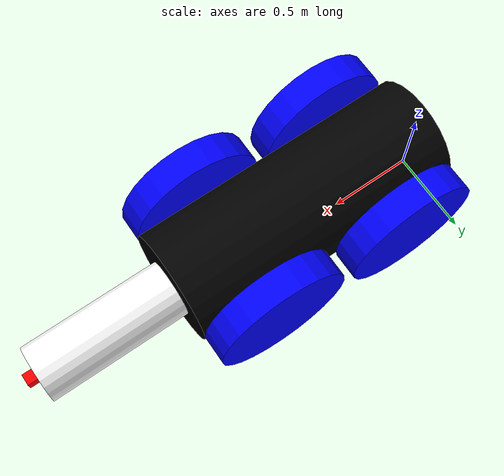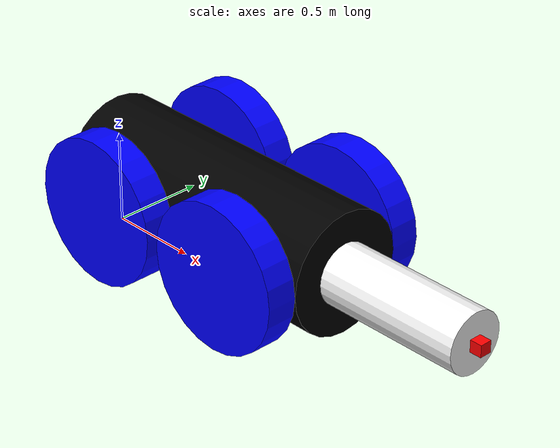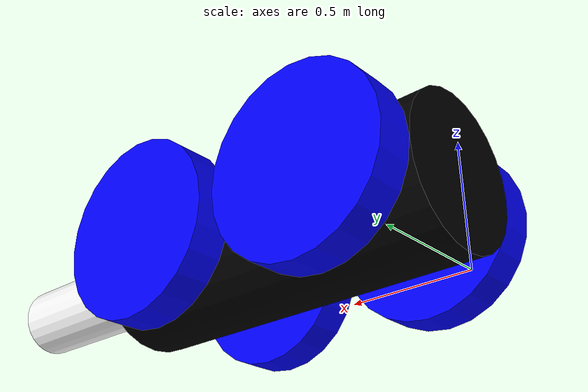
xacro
<?xml version="1.0"?>
<robot xmlns:xacro="http://www.ros.org/wiki/xacro" name="colonoscopy">

    <xacro:include filename="inertial_macros.xacro"/>

    <xacro:include filename="depth_camera.xacro"/>

    <xacro:include filename="robot_core.xacro"/>

    <xacro:include filename="keyboard_control.xacro"/>

    <xacro:include filename="control.xacro"/>

</robot>

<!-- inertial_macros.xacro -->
<robot xmlns:xacro="http://www.ros.org/wiki/xacro" name="colonoscopy">

    <!-- Specify some standard inertial calculations https://en.wikipedia.org/wiki/List_of_moments_of_inertia -->
    <!-- These make use of xacro's mathematical functionality -->

    <xacro:macro name="inertial_sphere" params="mass radius *origin">
        <inertial>
            <xacro:insert_block name="origin"/>
            <mass value="${mass}" />
            <inertia ixx="${(2/5) * mass * (radius*radius)}" ixy="0.0" ixz="0.0"
                    iyy="${(2/5) * mass * (radius*radius)}" iyz="0.0"
                    izz="${(2/5) * mass * (radius*radius)}" />
        </inertial>
    </xacro:macro>

    <xacro:macro name="inertial_box" params="mass x y z *origin">
        <inertial>
            <xacro:insert_block name="origin"/>
            <mass value="${mass}" />
            <inertia ixx="${(1/12) * mass * (y*y+z*z)}" ixy="0.0" ixz="0.0"
                    iyy="${(1/12) * mass * (x*x+z*z)}" iyz="0.0"
                    izz="${(1/12) * mass * (x*x+y*y)}" />
        </inertial>
    </xacro:macro>

    <xacro:macro name="inertial_cylinder" params="mass length radius *origin">
        <inertial>
            <xacro:insert_block name="origin"/>
            <mass value="${mass}" />
            <inertia ixx="${(1/12) * mass * (3*radius*radius + length*length)}" ixy="0.0" ixz="0.0"
                    iyy="${(1/12) * mass * (3*radius*radius + length*length)}" iyz="0.0"
                    izz="${(1/2) * mass * (radius*radius)}" />
        </inertial>
    </xacro:macro>

</robot>

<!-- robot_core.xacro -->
<robot xmlns:xacro="http://www.ros.org/wiki/xacro" name="colonoscopy">

    <!-- COLORS -->
    <material name="white">
        <color rgba="1 1 1 1" />
    </material>

    <material name="orange">
        <color rgba="1 0.3 0.1 1"/>
    </material>

    <material name="blue">
        <color rgba="0 0 1 1"/>
    </material>

    <material name="black">
        <color rgba="0 0 0 1"/>
    </material>

    <material name="red">
        <color rgba="1 0 0 1"/>
    </material>

    <!-- BASE LINK -->
    <link name="base_link"/>

    <!-- DEFINE PARAMETERS -->
    <xacro:property name="chassis_radius" value="0.0065"/>
    <xacro:property name="chassis_length" value="${chassis_radius * 5}"/>
    <xacro:property name="wheel_radius" value="${chassis_radius * 1.2}"/>
    <xacro:property name="wheel_length" value="${chassis_length * 0.1}"/>
    <xacro:property name="chassis_mass" value="1.0"/>
    <xacro:property name="wheel_mass" value="0.005"/>
    <xacro:property name="caster_wheel_mass" value="0.01"/>

    <!-- Update All Parameters from a Single Parameter -->
    <xacro:property name="scale" value="50.0"/>
    <xacro:property name="scaled_back_chassis_radius" value="${chassis_radius * scale}"/>
    <xacro:property name="scaled_back_chassis_length" value="${chassis_length * scale}"/>
    <xacro:property name="scaled_front_chassis_radius" value="${scaled_back_chassis_radius * 0.5}"/>
    <xacro:property name="scaled_front_chassis_length" value="${scaled_back_chassis_length * 0.5}"/>
    <xacro:property name="scaled_back_wheel_radius" value="${wheel_radius * scale}"/>
    <xacro:property name="scaled_back_wheel_length" value="${wheel_length * scale}"/>
    <xacro:property name="scaled_chassis_mass" value="${chassis_mass * scale}"/>
    <xacro:property name="scaled_front_chassis_mass" value="${scaled_chassis_mass * 0.2}"/>
    <xacro:property name="scaled_wheel_mass" value="${wheel_mass * scale}"/>
    <xacro:property name="scaled_caster_wheel_mass" value="${caster_wheel_mass * scale}"/>
    <xacro:property name="scaled_camera_length" value="${scaled_back_chassis_radius * 0.2}"/>

    <!-- BACK CHASSIS LINK -->
    <joint name="back_chassis_joint" type="fixed">
        <parent link="base_link"/>
        <child link="back_chassis"/>
        <origin xyz="${scaled_back_chassis_length / 2} 0 ${scaled_back_wheel_radius}" rpy="0 0 0"/>
    </joint>

    <link name="back_chassis">
        <visual>
            <origin xyz="0 0 0" rpy="0 ${pi/2} 0"/>
            <geometry>
                <cylinder radius="${scaled_back_chassis_radius}" length="${scaled_back_chassis_length}"/>
            </geometry>
            <material name="black"/>
        </visual>
        <collision>
            <origin xyz="0 0 0" rpy="0 ${pi/2} 0"/>
            <geometry>
                <cylinder radius="${scaled_back_chassis_radius}" length="${scaled_back_chassis_length - scaled_front_chassis_radius}"/>
            </geometry>
        </collision>
        <xacro:inertial_cylinder mass="${scaled_chassis_mass}" radius="${scaled_back_chassis_radius}" length="${scaled_back_chassis_length}">
            <origin xyz="0 0 0" rpy="0 ${pi/2} 0"/>
        </xacro:inertial_cylinder>
    </link>

    <gazebo reference="back_chassis">
        <material>Gazebo/Black</material>
    </gazebo>

    <joint name="lb_wheel_joint" type="continuous">
        <parent link="back_chassis"/>
        <child link="lb_wheel"/>
        <origin xyz="${scaled_back_wheel_radius - scaled_back_chassis_length / 2} ${scaled_back_chassis_radius} 0" rpy="-${pi/2} 0 0" />
        <axis xyz="0 0 1"/>
    </joint>

    <link name="lb_wheel">
        <visual>
            <origin xyz="0 0 ${scaled_back_wheel_length / 2}" rpy="0 0 0"/>
            <geometry>
                <cylinder radius="${scaled_back_wheel_radius}" length="${scaled_back_wheel_length}"/>
            </geometry>
            <material name="blue"/>
        </visual>
        <collision>
            <origin xyz="0 0 ${scaled_back_wheel_length / 2}" rpy="0 0 0"/>
            <geometry>
                <cylinder radius="${scaled_back_wheel_radius}" length="${scaled_back_wheel_length}"/>
            </geometry>
        </collision>
        <xacro:inertial_cylinder mass="${scaled_wheel_mass}" radius="${scaled_back_wheel_radius}" length="${scaled_back_wheel_length}">
            <origin xyz="0 0 ${scaled_back_wheel_length / 2}" rpy="0 0 0"/>
        </xacro:inertial_cylinder>
    </link>

    <gazebo reference="lb_wheel">
        <material>Gazebo/Blue</material>
    </gazebo>

    <joint name="rb_wheel_joint" type="continuous">
        <parent link="back_chassis"/>
        <child link="rb_wheel"/>
        <origin xyz="${scaled_back_wheel_radius - scaled_back_chassis_length / 2} -${scaled_back_chassis_radius} 0" rpy="${pi/2} 0 0" />
        <axis xyz="0 0 -1"/>
    </joint>

    <link name="rb_wheel">
        <visual>
            <origin xyz="0 0 ${scaled_back_wheel_length / 2}" rpy="0 0 0"/>
            <geometry>
                <cylinder radius="${scaled_back_wheel_radius}" length="${scaled_back_wheel_length}"/>
            </geometry>
            <material name="blue"/>
        </visual>
        <collision>
            <origin xyz="0 0 ${scaled_back_wheel_length / 2}" rpy="0 0 0"/>
            <geometry>
                <cylinder radius="${scaled_back_wheel_radius}" length="${scaled_back_wheel_length}"/>
            </geometry>
        </collision>
        <xacro:inertial_cylinder mass="${scaled_wheel_mass}" radius="${scaled_back_wheel_radius}" length="${scaled_back_wheel_length}">
            <origin xyz="0 0 ${scaled_back_wheel_length / 2}" rpy="0 0 0"/>
        </xacro:inertial_cylinder>
    </link>

    <gazebo reference="rb_wheel">
        <material>Gazebo/Blue</material>
    </gazebo>

    <joint name="lb2_wheel_joint" type="continuous">
        <parent link="back_chassis"/>
        <child link="lb2_wheel"/>
        <origin xyz="${scaled_back_chassis_length / 2 - scaled_back_wheel_radius} ${scaled_back_chassis_radius} 0" rpy="-${pi/2} 0 0"/>
        <axis xyz="0 0 1"/>
    </joint>

    <link name="lb2_wheel">
        <visual>
            <origin xyz="0 0 ${scaled_back_wheel_length / 2}" rpy="0 0 0"/>
            <geometry>
                <cylinder radius="${scaled_back_wheel_radius}" length="${scaled_back_wheel_length}"/>
            </geometry>
            <material name="blue"/>
        </visual>
        <collision>
            <origin xyz="0 0 ${scaled_back_wheel_length / 2}" rpy="0 0 0"/>
            <geometry>
                <cylinder radius="${scaled_back_wheel_radius}" length="${scaled_back_wheel_length}"/>
            </geometry>
        </collision>
        <xacro:inertial_cylinder mass="${scaled_wheel_mass}" radius="${scaled_back_wheel_radius}" length="${scaled_back_wheel_length}">
            <origin xyz="0 0 ${scaled_back_wheel_length / 2}" rpy="0 0 0"/>
        </xacro:inertial_cylinder>
    </link>

    <gazebo reference="lb2_wheel">
        <material>Gazebo/Blue</material>
        <mu1 value="0.001"/>
        <mu2 value="0.001"/>
    </gazebo>

    <joint name="rb2_wheel_joint" type="continuous">
        <parent link="back_chassis"/>
        <child link="rb2_wheel"/>
        <origin xyz="${scaled_back_chassis_length / 2 - scaled_back_wheel_radius} -${scaled_back_chassis_radius} 0" rpy="${pi/2} 0 0"/>
        <axis xyz="0 0 -1"/>
    </joint>

    <link name="rb2_wheel">
        <visual>
            <origin xyz="0 0 ${scaled_back_wheel_length / 2}" rpy="0 0 0"/>
            <geometry>
                <cylinder radius="${scaled_back_wheel_radius}" length="${scaled_back_wheel_length}"/>
            </geometry>
            <material name="blue"/>
        </visual>
        <collision>
            <origin xyz="0 0 ${scaled_back_wheel_length / 2}" rpy="0 0 0"/>
            <geometry>
                <cylinder radius="${scaled_back_wheel_radius}" length="${scaled_back_wheel_length}"/>
            </geometry>
        </collision>
        <xacro:inertial_cylinder mass="${scaled_wheel_mass}" radius="${scaled_back_wheel_radius}" length="${scaled_back_wheel_length}">
            <origin xyz="0 0 ${scaled_back_wheel_length / 2}" rpy="0 0 0"/>
        </xacro:inertial_cylinder>
    </link>

    <gazebo reference="rb2_wheel">
        <material>Gazebo/Blue</material>
        <mu1 value="0.001"/>
        <mu2 value="0.001"/>
    </gazebo>

    <joint name="chassis_roll_joint" type="revolute">
        <parent link="back_chassis"/>
        <child link="chassis_roll_link"/>
        <origin xyz="${scaled_back_chassis_length / 2}  0 0" rpy="0 0 0"/>
        <axis xyz="-1 0 0"/>
        <limit lower="-0.5" upper="0.5" effort="1000" velocity="1.0"/>
    </joint>

    <link name="chassis_roll_link">
        <inertial>
            <mass value="0.001"/>
            <inertia ixx="1e-6" ixy="0" ixz="0" iyy="1e-6" iyz="0" izz="1e-6"/>
        </inertial>
    </link>

    <joint name="chassis_pitch_joint" type="revolute">
        <parent link="chassis_roll_link"/>
        <child link="chassis_pitch_link"/>
        <axis xyz="0 1 0"/>
        <origin xyz="0 0 0" rpy="0 0 0"/>
        <limit lower="-0.5" upper="0.5" effort="1000" velocity="1.0"/>
    </joint>

    <link name="chassis_pitch_link">
        <inertial>
            <mass value="0.001"/>
            <inertia ixx="1e-6" ixy="0" ixz="0" iyy="1e-6" iyz="0" izz="1e-6"/>
        </inertial>
    </link>

    <joint name="chassis_yaw_joint" type="revolute">
        <parent link="chassis_pitch_link"/>
        <child link="front_chassis"/>
        <axis xyz="0 0 1"/>
        <origin xyz="0 0 0" rpy="0 0 0"/>
        <limit lower="-0.5" upper="0.5" effort="1000" velocity="1.0"/>
    </joint>

    <link name="front_chassis">
        <visual>
            <origin xyz="${scaled_front_chassis_length / 2} 0 0" rpy="0 ${pi/2} 0"/>
            <geometry>
                <cylinder radius="${scaled_front_chassis_radius}" length="${scaled_front_chassis_length}"/>
            </geometry>
            <material name="white"/>
        </visual>
        <collision>
            <origin xyz="${scaled_front_chassis_length / 2} 0 0" rpy="0 ${pi/2} 0"/>
            <geometry>
                <cylinder radius="${scaled_front_chassis_radius}" length="${scaled_front_chassis_length - scaled_front_chassis_radius}"/>
            </geometry>
        </collision>
        <xacro:inertial_cylinder mass="${scaled_front_chassis_mass}" radius="${scaled_front_chassis_radius}" length="${scaled_front_chassis_length}">
            <origin xyz="${scaled_front_chassis_length / 2} 0 0" rpy="0 ${pi/2} 0"/>
        </xacro:inertial_cylinder>
    </link>

    <gazebo reference="front_chassis">
        <material>Gazebo/White</material>
    </gazebo>

    <joint name="f_caster_wheel_joint" type="fixed">
        <parent link="front_chassis"/>
        <child link="f_caster_wheel"/>
        <origin xyz="${scaled_front_chassis_length * 0.75} 0 -${scaled_front_chassis_radius / 2}" rpy="0 0 0"/>
    </joint>

    <link name="f_caster_wheel">
        <visual>
            <geometry>
                <sphere radius="${scaled_front_chassis_radius / 2}"/>
            </geometry>
            <material name="black"/>
        </visual>
        <collision>
            <geometry>
                <sphere radius="${scaled_front_chassis_radius / 2}"/>
            </geometry>
        </collision>
        <xacro:inertial_sphere mass="${scaled_caster_wheel_mass}" radius="${scaled_front_chassis_radius / 2}">
            <origin xyz="0 0 0" rpy="0 0 0"/>
        </xacro:inertial_sphere>
    </link>

    <gazebo reference="f_caster_wheel">
        <material>Gazebo/Black</material>
        <mu1 value="0.001"/>
        <mu2 value="0.001"/>
    </gazebo>

    <!-- CAMERA -->
    <joint name="camera_joint" type="fixed">
        <parent link="front_chassis"/>
        <child link="camera_link"/>
        <origin xyz="${scaled_front_chassis_length} 0 0" rpy="0 0 0"/>
    </joint>

    <link name="camera_link">
        <visual>
            <origin xyz="${scaled_camera_length / 2} 0 0" rpy="0 0 0"/>
            <geometry>
                <box size="${scaled_camera_length} ${scaled_camera_length} ${scaled_camera_length}"/>
            </geometry>
            <material name="red"/>
        </visual>
        <collision>
            <origin xyz="${scaled_camera_length / 2} 0 0" rpy="0 0 0"/>
            <geometry>
                <box size="${scaled_camera_length} ${scaled_camera_length} ${scaled_camera_length}"/>
            </geometry>
        </collision>
    </link>

    <joint name="camera_optical_joint" type="fixed">
        <parent link="camera_link"/>
        <child link="camera_optical_link"/>
        <origin xyz="0 0 0" rpy="${-pi/2} 0 ${-pi/2}"/>
    </joint>

    <link name="camera_optical_link"/>

</robot>
